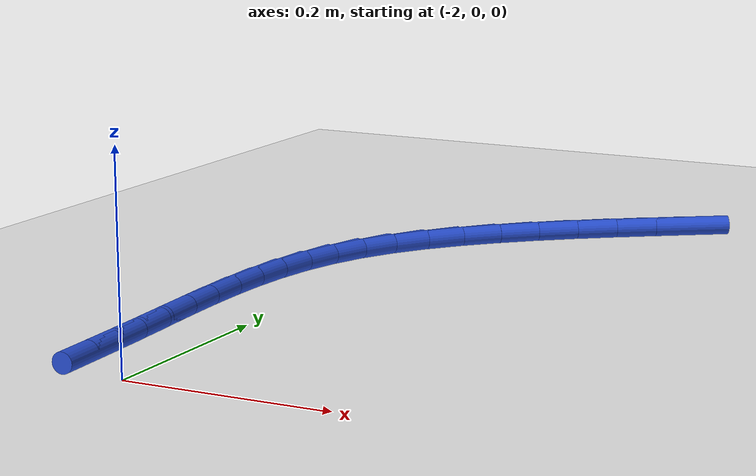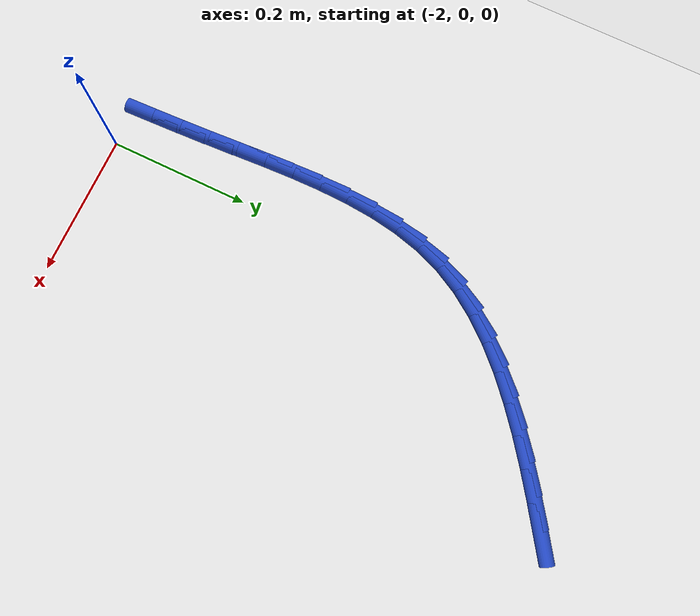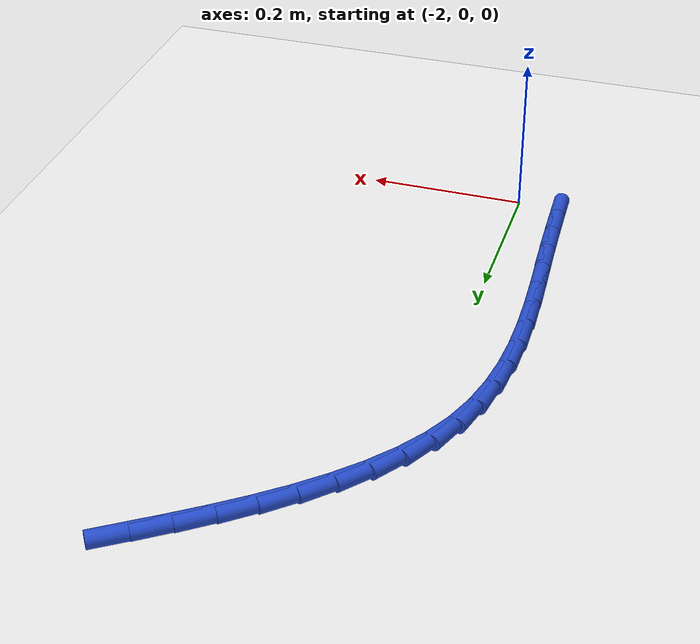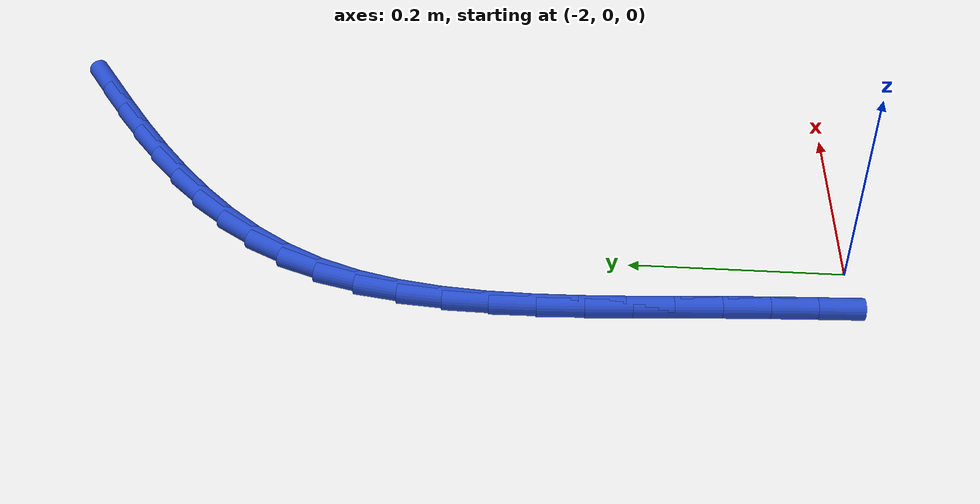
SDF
<sdf version="1.6">
 <world name="default">
  <model name="ground_plane">
   <static>1</static>
   <link name="link">
    <collision name="collision">
     <geometry><plane><normal>0 0 1</normal><size>100 100</size></plane></geometry>
     <surface><friction><ode><mu>100</mu><mu2>50</mu2></ode></friction></surface>
    </collision>
    <visual name="visual">
     <cast_shadows>0</cast_shadows>
     <geometry><plane><normal>0 0 1</normal><size>100 100</size></plane></geometry>
     <material>
      <script><uri>file://media/materials/scripts/gazebo.material</uri><name>Gazebo/WhiteGlow</name></script>
     </material>
    </visual>
   </link>
  </model>
  <model name="line">
   <link name="link_58">
    <pose>-1.7675232730939137 0.7401037931918861 0.01 0 1.57 0.5891944055719505</pose>
    <collision name="collision">
     <geometry><cylinder><radius>0.01</radius><length>0.08</length></cylinder></geometry>
    </collision>
    <visual name="visual">
     <material>
      <script><name>Gazebo/Blue</name><uri>file://media/materials/scripts/gazebo.material</uri></script>
     </material>
     <geometry><cylinder><radius>0.01</radius><length>0.08</length></cylinder></geometry>
    </visual>
   </link>
   <link name="link_59">
    <pose>-1.8034234246912977 0.7161085078045296 0.01 0 1.57 0.6074756814900042</pose>
    <collision name="collision">
     <geometry><cylinder><radius>0.01</radius><length>0.08</length></cylinder></geometry>
    </collision>
    <visual name="visual">
     <material>
      <script><name>Gazebo/Blue</name><uri>file://media/materials/scripts/gazebo.material</uri></script>
     </material>
     <geometry><cylinder><radius>0.01</radius><length>0.08</length></cylinder></geometry>
    </visual>
   </link>
   <link name="link_60">
    <pose>-1.8389986553415543 0.6913777439037898 0.01 0 1.57 0.6358760869394062</pose>
    <collision name="collision">
     <geometry><cylinder><radius>0.01</radius><length>0.08</length></cylinder></geometry>
    </collision>
    <visual name="visual">
     <material>
      <script><name>Gazebo/Blue</name><uri>file://media/materials/scripts/gazebo.material</uri></script>
     </material>
     <geometry><cylinder><radius>0.01</radius><length>0.08</length></cylinder></geometry>
    </visual>
   </link>
   <link name="link_61">
    <pose>-1.8737182228083555 0.665749376382515 0.01 0 1.57 0.6751353309402686</pose>
    <collision name="collision">
     <geometry><cylinder><radius>0.01</radius><length>0.08</length></cylinder></geometry>
    </collision>
    <visual name="visual">
     <material>
      <script><name>Gazebo/Blue</name><uri>file://media/materials/scripts/gazebo.material</uri></script>
     </material>
     <geometry><cylinder><radius>0.01</radius><length>0.08</length></cylinder></geometry>
    </visual>
   </link>
   <link name="link_62">
    <pose>-1.9070513848553732 0.6390612801335539 0.01 0 1.57 0.7263685108960141</pose>
    <collision name="collision">
     <geometry><cylinder><radius>0.01</radius><length>0.08</length></cylinder></geometry>
    </collision>
    <visual name="visual">
     <material>
      <script><name>Gazebo/Blue</name><uri>file://media/materials/scripts/gazebo.material</uri></script>
     </material>
     <geometry><cylinder><radius>0.01</radius><length>0.08</length></cylinder></geometry>
    </visual>
   </link>
   <link name="link_63">
    <pose>-1.9384673992462802 0.611151330049755 0.01 0 1.57 0.7909901587287327</pose>
    <collision name="collision">
     <geometry><cylinder><radius>0.01</radius><length>0.08</length></cylinder></geometry>
    </collision>
    <visual name="visual">
     <material>
      <script><name>Gazebo/Blue</name><uri>file://media/materials/scripts/gazebo.material</uri></script>
     </material>
     <geometry><cylinder><radius>0.01</radius><length>0.08</length></cylinder></geometry>
    </visual>
   </link>
   <link name="link_64">
    <pose>-1.9674355237447485 0.581857401023967 0.01 0 1.57 0.8705442751016217</pose>
    <collision name="collision">
     <geometry><cylinder><radius>0.01</radius><length>0.08</length></cylinder></geometry>
    </collision>
    <visual name="visual">
     <material>
      <script><name>Gazebo/Blue</name><uri>file://media/materials/scripts/gazebo.material</uri></script>
     </material>
     <geometry><cylinder><radius>0.01</radius><length>0.08</length></cylinder></geometry>
    </visual>
   </link>
   <link name="link_65">
    <pose>-1.9934250161144502 0.5510173679490381 0.01 0 1.57 0.9663593895171518</pose>
    <collision name="collision">
     <geometry><cylinder><radius>0.01</radius><length>0.08</length></cylinder></geometry>
    </collision>
    <visual name="visual">
     <material>
      <script><name>Gazebo/Blue</name><uri>file://media/materials/scripts/gazebo.material</uri></script>
     </material>
     <geometry><cylinder><radius>0.01</radius><length>0.08</length></cylinder></geometry>
    </visual>
   </link>
   <link name="link_66">
    <pose>-2.0159051341190586 0.518469105717817 0.01 0 1.57 1.078954262658766</pose>
    <collision name="collision">
     <geometry><cylinder><radius>0.01</radius><length>0.08</length></cylinder></geometry>
    </collision>
    <visual name="visual">
     <material>
      <script><name>Gazebo/Blue</name><uri>file://media/materials/scripts/gazebo.material</uri></script>
     </material>
     <geometry><cylinder><radius>0.01</radius><length>0.08</length></cylinder></geometry>
    </visual>
   </link>
   <link name="link_67">
    <pose>-2.034345135522244 0.4840504892231526 0.01 0 1.57 1.2036013778380554</pose>
    <collision name="collision">
     <geometry><cylinder><radius>0.01</radius><length>0.08</length></cylinder></geometry>
    </collision>
    <visual name="visual">
     <material>
      <script><name>Gazebo/Blue</name><uri>file://media/materials/scripts/gazebo.material</uri></script>
     </material>
     <geometry><cylinder><radius>0.01</radius><length>0.08</length></cylinder></geometry>
    </visual>
   </link>
   <link name="link_68">
    <pose>-2.0483453213435636 0.4476522999408986 0.01 0 1.57 1.3174472961279797</pose>
    <collision name="collision">
     <geometry><cylinder><radius>0.01</radius><length>0.08</length></cylinder></geometry>
    </collision>
    <visual name="visual">
     <material>
      <script><name>Gazebo/Blue</name><uri>file://media/materials/scripts/gazebo.material</uri></script>
     </material>
     <geometry><cylinder><radius>0.01</radius><length>0.08</length></cylinder></geometry>
    </visual>
   </link>
   <link name="link_69">
    <pose>-2.058233979195863 0.40945923209247803 0.01 0 1.57 1.412031176600392</pose>
    <collision name="collision">
     <geometry><cylinder><radius>0.01</radius><length>0.08</length></cylinder></geometry>
    </collision>
    <visual name="visual">
     <material>
      <script><name>Gazebo/Blue</name><uri>file://media/materials/scripts/gazebo.material</uri></script>
     </material>
     <geometry><cylinder><radius>0.01</radius><length>0.08</length></cylinder></geometry>
    </visual>
   </link>
   <link name="link_70">
    <pose>-2.0645907380626425 0.3697574548893827 0.01 0 1.57 1.4877915944481888</pose>
    <collision name="collision">
     <geometry><cylinder><radius>0.01</radius><length>0.08</length></cylinder></geometry>
    </collision>
    <visual name="visual">
     <material>
      <script><name>Gazebo/Blue</name><uri>file://media/materials/scripts/gazebo.material</uri></script>
     </material>
     <geometry><cylinder><radius>0.01</radius><length>0.08</length></cylinder></geometry>
    </visual>
   </link>
   <link name="link_71">
    <pose>-2.0679954649666734 0.3288332336475866 0.01 0 1.57 1.5461345313920896</pose>
    <collision name="collision">
     <geometry><cylinder><radius>0.01</radius><length>0.08</length></cylinder></geometry>
    </collision>
    <visual name="visual">
     <material>
      <script><name>Gazebo/Blue</name><uri>file://media/materials/scripts/gazebo.material</uri></script>
     </material>
     <geometry><cylinder><radius>0.01</radius><length>0.08</length></cylinder></geometry>
    </visual>
   </link>
   <link name="link_72">
    <pose>-2.0690280269307246 0.2869728336830651 0.01 0 1.57 -1.5529264260222502</pose>
    <collision name="collision">
     <geometry><cylinder><radius>0.01</radius><length>0.08</length></cylinder></geometry>
    </collision>
    <visual name="visual">
     <material>
      <script><name>Gazebo/Blue</name><uri>file://media/materials/scripts/gazebo.material</uri></script>
     </material>
     <geometry><cylinder><radius>0.01</radius><length>0.08</length></cylinder></geometry>
    </visual>
   </link>
   <link name="link_73">
    <pose>-2.0682682909775676 0.24446252031179166 0.01 0 1.57 -1.5248295544569161</pose>
    <collision name="collision">
     <geometry><cylinder><radius>0.01</radius><length>0.08</length></cylinder></geometry>
    </collision>
    <visual name="visual">
     <material>
      <script><name>Gazebo/Blue</name><uri>file://media/materials/scripts/gazebo.material</uri></script>
     </material>
     <geometry><cylinder><radius>0.01</radius><length>0.08</length></cylinder></geometry>
    </visual>
   </link>
   <link name="link_74">
    <pose>-2.066296124129972 0.20158855884974172 0.01 0 1.57 -1.5102267524517694</pose>
    <collision name="collision">
     <geometry><cylinder><radius>0.01</radius><length>0.08</length></cylinder></geometry>
    </collision>
    <visual name="visual">
     <material>
      <script><name>Gazebo/Blue</name><uri>file://media/materials/scripts/gazebo.material</uri></script>
     </material>
     <geometry><cylinder><radius>0.01</radius><length>0.08</length></cylinder></geometry>
    </visual>
   </link>
   <link name="link_75">
    <pose>-2.063691393410707 0.15863721461288932 0.01 0 1.57 -1.5087032394584863</pose>
    <collision name="collision">
     <geometry><cylinder><radius>0.01</radius><length>0.08</length></cylinder></geometry>
    </collision>
    <visual name="visual">
     <material>
      <script><name>Gazebo/Blue</name><uri>file://media/materials/scripts/gazebo.material</uri></script>
     </material>
     <geometry><cylinder><radius>0.01</radius><length>0.08</length></cylinder></geometry>
    </visual>
   </link>
   <link name="link_76">
    <pose>-2.061033965842544 0.11589475291720863 0.01 0 1.57 -1.5178229557200877</pose>
    <collision name="collision">
     <geometry><cylinder><radius>0.01</radius><length>0.08</length></cylinder></geometry>
    </collision>
    <visual name="visual">
     <material>
      <script><name>Gazebo/Blue</name><uri>file://media/materials/scripts/gazebo.material</uri></script>
     </material>
     <geometry><cylinder><radius>0.01</radius><length>0.08</length></cylinder></geometry>
    </visual>
   </link>
   <link name="link_77">
    <pose>-2.058791208673687 0.07359691775617512 0.01 0 1.57 -1.5260991968962858</pose>
    <collision name="collision">
     <geometry><cylinder><radius>0.01</radius><length>0.08</length></cylinder></geometry>
    </collision>
    <visual name="visual">
     <material>
      <script><name>Gazebo/Blue</name><uri>file://media/materials/scripts/gazebo.material</uri></script>
     </material>
     <geometry><cylinder><radius>0.01</radius><length>0.08</length></cylinder></geometry>
    </visual>
   </link>
   <link name="link_78">
    <pose>-2.056919524479739 0.03174998945446602 0.01 0 1.57 -1.5300708875525295</pose>
    <collision name="collision">
     <geometry><cylinder><radius>0.01</radius><length>0.08</length></cylinder></geometry>
    </collision>
    <visual name="visual">
     <material>
      <script><name>Gazebo/Blue</name><uri>file://media/materials/scripts/gazebo.material</uri></script>
     </material>
     <geometry><cylinder><radius>0.01</radius><length>0.08</length></cylinder></geometry>
    </visual>
   </link>
  </model>
 </world>
</sdf>
